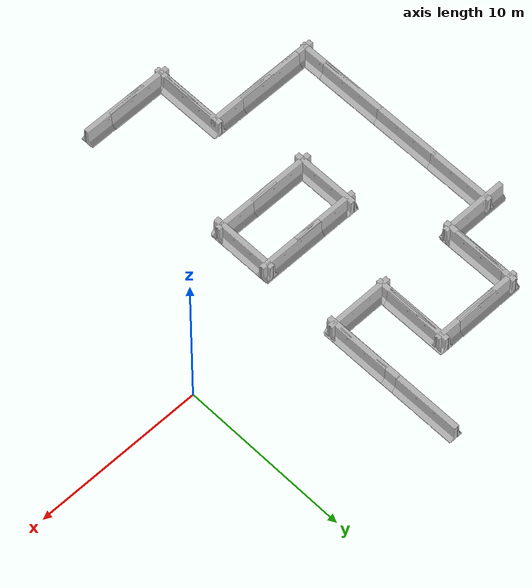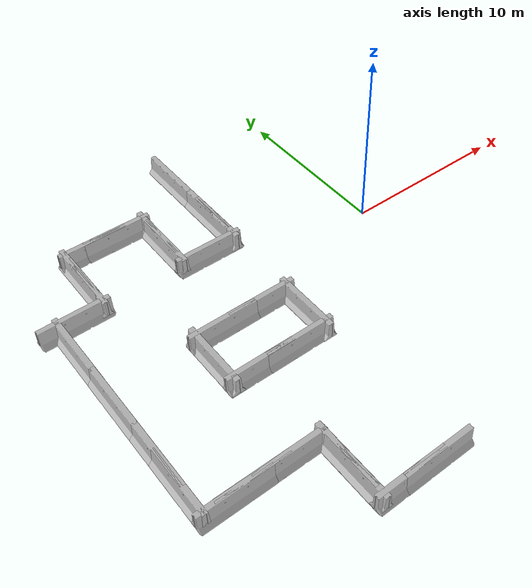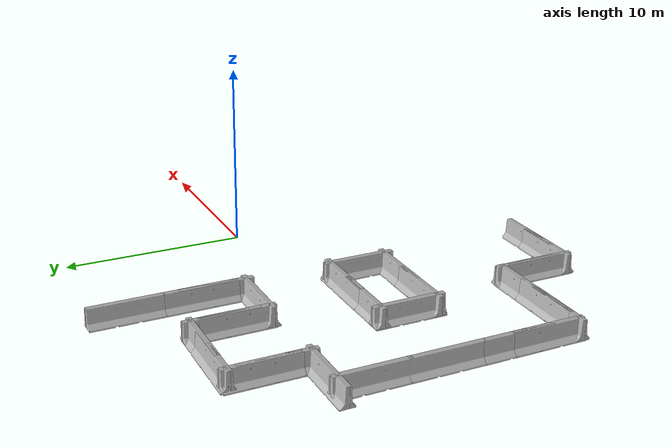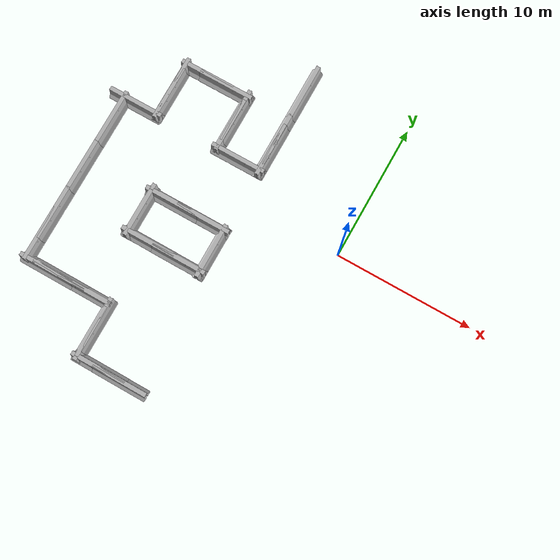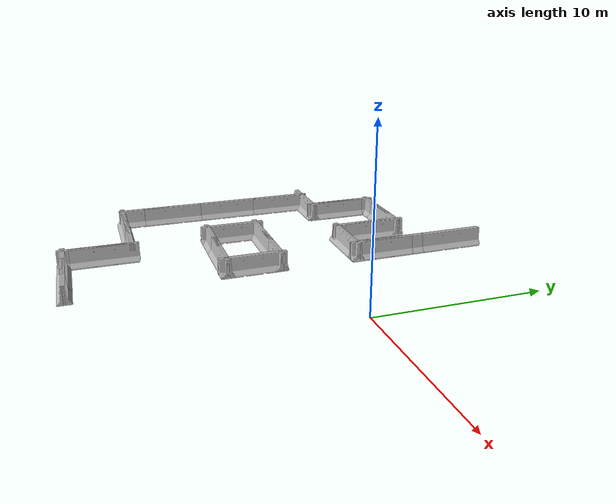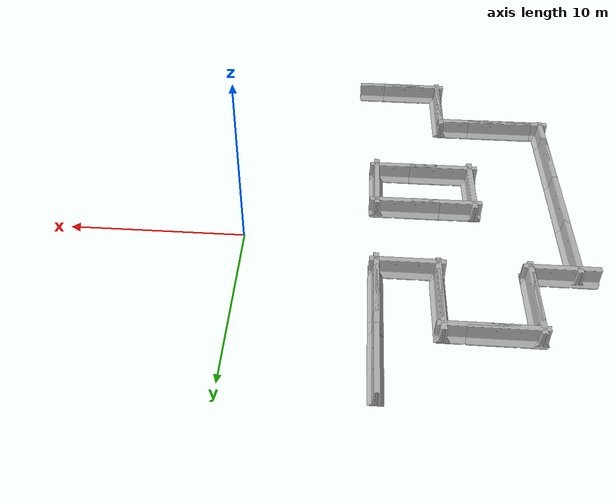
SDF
<sdf version="1.6">
 <world name="default">
  <model name="jersey_barrier_0_clone_2_clone_3">
   <static>1</static>
   <link name="link">
    <visual name="visual">
     <geometry>
      <mesh><uri>model://jersey_barrier/meshes/jersey_barrier.dae</uri><scale>1 1 1</scale></mesh>
     </geometry>
    </visual>
    <collision name="upright">
     <pose>0 0 0.5715 0 -0 0</pose>
     <geometry><box><size>4.06542 0.3063 1.143</size></box></geometry>
    </collision>
    <collision name="base">
     <pose>0 0 0.032258 0 -0 0</pose>
     <geometry><box><size>4.06542 0.8107 0.064516</size></box></geometry>
    </collision>
    <collision name="base2">
     <pose>0 0 0.1 0 -0 0</pose>
     <geometry><box><size>4.06542 0.65 0.1</size></box></geometry>
    </collision>
    <collision name="base3">
     <pose>0 0 0.2 0 -0 0</pose>
     <geometry><box><size>4.06542 0.5 0.1</size></box></geometry>
    </collision>
    <collision name="left-angle">
     <pose>0 -0.224 0.2401 0.9 -0 0</pose>
     <geometry><box><size>4.06542 0.5 0.064516</size></box></geometry>
    </collision>
    <collision name="right-angle">
     <pose>0 0.224 0.2401 -0.9 0 0</pose>
     <geometry><box><size>4.06542 0.5 0.064516</size></box></geometry>
    </collision>
   </link>
   <pose>-7.43243 4.80244 0 0 -0 1.57549</pose>
  </model>
  <model name="jersey_barrier_0_clone_2_clone_3_clone_1">
   <static>1</static>
   <link name="link">
    <visual name="visual">
     <geometry>
      <mesh><uri>model://jersey_barrier/meshes/jersey_barrier.dae</uri><scale>1 1 1</scale></mesh>
     </geometry>
    </visual>
    <collision name="upright">
     <pose>0 0 0.5715 0 -0 0</pose>
     <geometry><box><size>4.06542 0.3063 1.143</size></box></geometry>
    </collision>
    <collision name="base">
     <pose>0 0 0.032258 0 -0 0</pose>
     <geometry><box><size>4.06542 0.8107 0.064516</size></box></geometry>
    </collision>
    <collision name="base2">
     <pose>0 0 0.1 0 -0 0</pose>
     <geometry><box><size>4.06542 0.65 0.1</size></box></geometry>
    </collision>
    <collision name="base3">
     <pose>0 0 0.2 0 -0 0</pose>
     <geometry><box><size>4.06542 0.5 0.1</size></box></geometry>
    </collision>
    <collision name="left-angle">
     <pose>0 -0.224 0.2401 0.9 -0 0</pose>
     <geometry><box><size>4.06542 0.5 0.064516</size></box></geometry>
    </collision>
    <collision name="right-angle">
     <pose>0 0.224 0.2401 -0.9 0 0</pose>
     <geometry><box><size>4.06542 0.5 0.064516</size></box></geometry>
    </collision>
   </link>
   <pose>-7.4465 8.73158 0 0 -0 1.57549</pose>
  </model>
  <model name="jersey_barrier_0_clone_2_clone_3_clone_3">
   <static>1</static>
   <link name="link">
    <visual name="visual">
     <geometry>
      <mesh><uri>model://jersey_barrier/meshes/jersey_barrier.dae</uri><scale>1 1 1</scale></mesh>
     </geometry>
    </visual>
    <collision name="upright">
     <pose>0 0 0.5715 0 -0 0</pose>
     <geometry><box><size>4.06542 0.3063 1.143</size></box></geometry>
    </collision>
    <collision name="base">
     <pose>0 0 0.032258 0 -0 0</pose>
     <geometry><box><size>4.06542 0.8107 0.064516</size></box></geometry>
    </collision>
    <collision name="base2">
     <pose>0 0 0.1 0 -0 0</pose>
     <geometry><box><size>4.06542 0.65 0.1</size></box></geometry>
    </collision>
    <collision name="base3">
     <pose>0 0 0.2 0 -0 0</pose>
     <geometry><box><size>4.06542 0.5 0.1</size></box></geometry>
    </collision>
    <collision name="left-angle">
     <pose>0 -0.224 0.2401 0.9 -0 0</pose>
     <geometry><box><size>4.06542 0.5 0.064516</size></box></geometry>
    </collision>
    <collision name="right-angle">
     <pose>0 0.224 0.2401 -0.9 0 0</pose>
     <geometry><box><size>4.06542 0.5 0.064516</size></box></geometry>
    </collision>
   </link>
   <pose>-7.42195 3.99004 0 0 -0 1.57549</pose>
  </model>
  <model name="jersey_barrier_0_clone_1_clone_4">
   <static>1</static>
   <link name="link">
    <visual name="visual">
     <geometry>
      <mesh><uri>model://jersey_barrier/meshes/jersey_barrier.dae</uri><scale>1 1 1</scale></mesh>
     </geometry>
    </visual>
    <collision name="upright">
     <pose>0 0 0.5715 0 -0 0</pose>
     <geometry><box><size>4.06542 0.3063 1.143</size></box></geometry>
    </collision>
    <collision name="base">
     <pose>0 0 0.032258 0 -0 0</pose>
     <geometry><box><size>4.06542 0.8107 0.064516</size></box></geometry>
    </collision>
    <collision name="base2">
     <pose>0 0 0.1 0 -0 0</pose>
     <geometry><box><size>4.06542 0.65 0.1</size></box></geometry>
    </collision>
    <collision name="base3">
     <pose>0 0 0.2 0 -0 0</pose>
     <geometry><box><size>4.06542 0.5 0.1</size></box></geometry>
    </collision>
    <collision name="left-angle">
     <pose>0 -0.224 0.2401 0.9 -0 0</pose>
     <geometry><box><size>4.06542 0.5 0.064516</size></box></geometry>
    </collision>
    <collision name="right-angle">
     <pose>0 0.224 0.2401 -0.9 0 0</pose>
     <geometry><box><size>4.06542 0.5 0.064516</size></box></geometry>
    </collision>
   </link>
   <pose>-9.07746 2.38434 0 0 -0 0</pose>
  </model>
  <model name="jersey_barrier_0_clone_1_clone_5">
   <static>1</static>
   <link name="link">
    <visual name="visual">
     <geometry>
      <mesh><uri>model://jersey_barrier/meshes/jersey_barrier.dae</uri><scale>1 1 1</scale></mesh>
     </geometry>
    </visual>
    <collision name="upright">
     <pose>0 0 0.5715 0 -0 0</pose>
     <geometry><box><size>4.06542 0.3063 1.143</size></box></geometry>
    </collision>
    <collision name="base">
     <pose>0 0 0.032258 0 -0 0</pose>
     <geometry><box><size>4.06542 0.8107 0.064516</size></box></geometry>
    </collision>
    <collision name="base2">
     <pose>0 0 0.1 0 -0 0</pose>
     <geometry><box><size>4.06542 0.65 0.1</size></box></geometry>
    </collision>
    <collision name="base3">
     <pose>0 0 0.2 0 -0 0</pose>
     <geometry><box><size>4.06542 0.5 0.1</size></box></geometry>
    </collision>
    <collision name="left-angle">
     <pose>0 -0.224 0.2401 0.9 -0 0</pose>
     <geometry><box><size>4.06542 0.5 0.064516</size></box></geometry>
    </collision>
    <collision name="right-angle">
     <pose>0 0.224 0.2401 -0.9 0 0</pose>
     <geometry><box><size>4.06542 0.5 0.064516</size></box></geometry>
    </collision>
   </link>
   <pose>-9.04937 -2.41898 0 0 -0 0</pose>
  </model>
  <model name="jersey_barrier_0_clone_2_clone_4">
   <static>1</static>
   <link name="link">
    <visual name="visual">
     <geometry>
      <mesh><uri>model://jersey_barrier/meshes/jersey_barrier.dae</uri><scale>1 1 1</scale></mesh>
     </geometry>
    </visual>
    <collision name="upright">
     <pose>0 0 0.5715 0 -0 0</pose>
     <geometry><box><size>4.06542 0.3063 1.143</size></box></geometry>
    </collision>
    <collision name="base">
     <pose>0 0 0.032258 0 -0 0</pose>
     <geometry><box><size>4.06542 0.8107 0.064516</size></box></geometry>
    </collision>
    <collision name="base2">
     <pose>0 0 0.1 0 -0 0</pose>
     <geometry><box><size>4.06542 0.65 0.1</size></box></geometry>
    </collision>
    <collision name="base3">
     <pose>0 0 0.2 0 -0 0</pose>
     <geometry><box><size>4.06542 0.5 0.1</size></box></geometry>
    </collision>
    <collision name="left-angle">
     <pose>0 -0.224 0.2401 0.9 -0 0</pose>
     <geometry><box><size>4.06542 0.5 0.064516</size></box></geometry>
    </collision>
    <collision name="right-angle">
     <pose>0 0.224 0.2401 -0.9 0 0</pose>
     <geometry><box><size>4.06542 0.5 0.064516</size></box></geometry>
    </collision>
   </link>
   <pose>-7.44439 -4.07454 0 0 -0 1.57549</pose>
  </model>
  <model name="jersey_barrier_0_clone_1_clone_7">
   <static>1</static>
   <link name="link">
    <visual name="visual">
     <geometry>
      <mesh><uri>model://jersey_barrier/meshes/jersey_barrier.dae</uri><scale>1 1 1</scale></mesh>
     </geometry>
    </visual>
    <collision name="upright">
     <pose>0 0 0.5715 0 -0 0</pose>
     <geometry><box><size>4.06542 0.3063 1.143</size></box></geometry>
    </collision>
    <collision name="base">
     <pose>0 0 0.032258 0 -0 0</pose>
     <geometry><box><size>4.06542 0.8107 0.064516</size></box></geometry>
    </collision>
    <collision name="base2">
     <pose>0 0 0.1 0 -0 0</pose>
     <geometry><box><size>4.06542 0.65 0.1</size></box></geometry>
    </collision>
    <collision name="base3">
     <pose>0 0 0.2 0 -0 0</pose>
     <geometry><box><size>4.06542 0.5 0.1</size></box></geometry>
    </collision>
    <collision name="left-angle">
     <pose>0 -0.224 0.2401 0.9 -0 0</pose>
     <geometry><box><size>4.06542 0.5 0.064516</size></box></geometry>
    </collision>
    <collision name="right-angle">
     <pose>0 0.224 0.2401 -0.9 0 0</pose>
     <geometry><box><size>4.06542 0.5 0.064516</size></box></geometry>
    </collision>
   </link>
   <pose>-11.4391 -2.42637 0 0 -0 0</pose>
  </model>
  <model name="jersey_barrier_0_clone_1_clone_8">
   <static>1</static>
   <link name="link">
    <visual name="visual">
     <geometry>
      <mesh><uri>model://jersey_barrier/meshes/jersey_barrier.dae</uri><scale>1 1 1</scale></mesh>
     </geometry>
    </visual>
    <collision name="upright">
     <pose>0 0 0.5715 0 -0 0</pose>
     <geometry><box><size>4.06542 0.3063 1.143</size></box></geometry>
    </collision>
    <collision name="base">
     <pose>0 0 0.032258 0 -0 0</pose>
     <geometry><box><size>4.06542 0.8107 0.064516</size></box></geometry>
    </collision>
    <collision name="base2">
     <pose>0 0 0.1 0 -0 0</pose>
     <geometry><box><size>4.06542 0.65 0.1</size></box></geometry>
    </collision>
    <collision name="base3">
     <pose>0 0 0.2 0 -0 0</pose>
     <geometry><box><size>4.06542 0.5 0.1</size></box></geometry>
    </collision>
    <collision name="left-angle">
     <pose>0 -0.224 0.2401 0.9 -0 0</pose>
     <geometry><box><size>4.06542 0.5 0.064516</size></box></geometry>
    </collision>
    <collision name="right-angle">
     <pose>0 0.224 0.2401 -0.9 0 0</pose>
     <geometry><box><size>4.06542 0.5 0.064516</size></box></geometry>
    </collision>
   </link>
   <pose>-9.07425 -5.61036 0 0 -0 0</pose>
  </model>
  <model name="jersey_barrier_0_clone_1_clone_10">
   <static>1</static>
   <link name="link">
    <visual name="visual">
     <geometry>
      <mesh><uri>model://jersey_barrier/meshes/jersey_barrier.dae</uri><scale>1 1 1</scale></mesh>
     </geometry>
    </visual>
    <collision name="upright">
     <pose>0 0 0.5715 0 -0 0</pose>
     <geometry><box><size>4.06542 0.3063 1.143</size></box></geometry>
    </collision>
    <collision name="base">
     <pose>0 0 0.032258 0 -0 0</pose>
     <geometry><box><size>4.06542 0.8107 0.064516</size></box></geometry>
    </collision>
    <collision name="base2">
     <pose>0 0 0.1 0 -0 0</pose>
     <geometry><box><size>4.06542 0.65 0.1</size></box></geometry>
    </collision>
    <collision name="base3">
     <pose>0 0 0.2 0 -0 0</pose>
     <geometry><box><size>4.06542 0.5 0.1</size></box></geometry>
    </collision>
    <collision name="left-angle">
     <pose>0 -0.224 0.2401 0.9 -0 0</pose>
     <geometry><box><size>4.06542 0.5 0.064516</size></box></geometry>
    </collision>
    <collision name="right-angle">
     <pose>0 0.224 0.2401 -0.9 0 0</pose>
     <geometry><box><size>4.06542 0.5 0.064516</size></box></geometry>
    </collision>
   </link>
   <pose>-11.4398 -5.59984 0 0 -0 0</pose>
  </model>
  <model name="jersey_barrier_0_clone_2_clone_4_clone">
   <static>1</static>
   <link name="link">
    <visual name="visual">
     <geometry>
      <mesh><uri>model://jersey_barrier/meshes/jersey_barrier.dae</uri><scale>1 1 1</scale></mesh>
     </geometry>
    </visual>
    <collision name="upright">
     <pose>0 0 0.5715 0 -0 0</pose>
     <geometry><box><size>4.06542 0.3063 1.143</size></box></geometry>
    </collision>
    <collision name="base">
     <pose>0 0 0.032258 0 -0 0</pose>
     <geometry><box><size>4.06542 0.8107 0.064516</size></box></geometry>
    </collision>
    <collision name="base2">
     <pose>0 0 0.1 0 -0 0</pose>
     <geometry><box><size>4.06542 0.65 0.1</size></box></geometry>
    </collision>
    <collision name="base3">
     <pose>0 0 0.2 0 -0 0</pose>
     <geometry><box><size>4.06542 0.5 0.1</size></box></geometry>
    </collision>
    <collision name="left-angle">
     <pose>0 -0.224 0.2401 0.9 -0 0</pose>
     <geometry><box><size>4.06542 0.5 0.064516</size></box></geometry>
    </collision>
    <collision name="right-angle">
     <pose>0 0.224 0.2401 -0.9 0 0</pose>
     <geometry><box><size>4.06542 0.5 0.064516</size></box></geometry>
    </collision>
   </link>
   <pose>-13.0271 -3.9955 0 0 -0 1.57549</pose>
  </model>
  <model name="jersey_barrier_0_clone_1_clone_13">
   <static>1</static>
   <link name="link">
    <visual name="visual">
     <geometry>
      <mesh><uri>model://jersey_barrier/meshes/jersey_barrier.dae</uri><scale>1 1 1</scale></mesh>
     </geometry>
    </visual>
    <collision name="upright">
     <pose>0 0 0.5715 0 -0 0</pose>
     <geometry><box><size>4.06542 0.3063 1.143</size></box></geometry>
    </collision>
    <collision name="base">
     <pose>0 0 0.032258 0 -0 0</pose>
     <geometry><box><size>4.06542 0.8107 0.064516</size></box></geometry>
    </collision>
    <collision name="base2">
     <pose>0 0 0.1 0 -0 0</pose>
     <geometry><box><size>4.06542 0.65 0.1</size></box></geometry>
    </collision>
    <collision name="base3">
     <pose>0 0 0.2 0 -0 0</pose>
     <geometry><box><size>4.06542 0.5 0.1</size></box></geometry>
    </collision>
    <collision name="left-angle">
     <pose>0 -0.224 0.2401 0.9 -0 0</pose>
     <geometry><box><size>4.06542 0.5 0.064516</size></box></geometry>
    </collision>
    <collision name="right-angle">
     <pose>0 0.224 0.2401 -0.9 0 0</pose>
     <geometry><box><size>4.06542 0.5 0.064516</size></box></geometry>
    </collision>
   </link>
   <pose>-13.4424 -10.4614 0 0 -0 0</pose>
  </model>
  <model name="jersey_barrier_0_clone_1_clone_14">
   <static>1</static>
   <link name="link">
    <visual name="visual">
     <geometry>
      <mesh><uri>model://jersey_barrier/meshes/jersey_barrier.dae</uri><scale>1 1 1</scale></mesh>
     </geometry>
    </visual>
    <collision name="upright">
     <pose>0 0 0.5715 0 -0 0</pose>
     <geometry><box><size>4.06542 0.3063 1.143</size></box></geometry>
    </collision>
    <collision name="base">
     <pose>0 0 0.032258 0 -0 0</pose>
     <geometry><box><size>4.06542 0.8107 0.064516</size></box></geometry>
    </collision>
    <collision name="base2">
     <pose>0 0 0.1 0 -0 0</pose>
     <geometry><box><size>4.06542 0.65 0.1</size></box></geometry>
    </collision>
    <collision name="base3">
     <pose>0 0 0.2 0 -0 0</pose>
     <geometry><box><size>4.06542 0.5 0.1</size></box></geometry>
    </collision>
    <collision name="left-angle">
     <pose>0 -0.224 0.2401 0.9 -0 0</pose>
     <geometry><box><size>4.06542 0.5 0.064516</size></box></geometry>
    </collision>
    <collision name="right-angle">
     <pose>0 0.224 0.2401 -0.9 0 0</pose>
     <geometry><box><size>4.06542 0.5 0.064516</size></box></geometry>
    </collision>
   </link>
   <pose>-15.4018 -10.4601 0 0 -0 0</pose>
  </model>
  <model name="jersey_barrier_0_clone_2_clone_4_clone_clone">
   <static>1</static>
   <link name="link">
    <visual name="visual">
     <geometry>
      <mesh><uri>model://jersey_barrier/meshes/jersey_barrier.dae</uri><scale>1 1 1</scale></mesh>
     </geometry>
    </visual>
    <collision name="upright">
     <pose>0 0 0.5715 0 -0 0</pose>
     <geometry><box><size>4.06542 0.3063 1.143</size></box></geometry>
    </collision>
    <collision name="base">
     <pose>0 0 0.032258 0 -0 0</pose>
     <geometry><box><size>4.06542 0.8107 0.064516</size></box></geometry>
    </collision>
    <collision name="base2">
     <pose>0 0 0.1 0 -0 0</pose>
     <geometry><box><size>4.06542 0.65 0.1</size></box></geometry>
    </collision>
    <collision name="base3">
     <pose>0 0 0.2 0 -0 0</pose>
     <geometry><box><size>4.06542 0.5 0.1</size></box></geometry>
    </collision>
    <collision name="left-angle">
     <pose>0 -0.224 0.2401 0.9 -0 0</pose>
     <geometry><box><size>4.06542 0.5 0.064516</size></box></geometry>
    </collision>
    <collision name="right-angle">
     <pose>0 0.224 0.2401 -0.9 0 0</pose>
     <geometry><box><size>4.06542 0.5 0.064516</size></box></geometry>
    </collision>
   </link>
   <pose>-18.0345 0.68222 0 0 -0 1.57549</pose>
  </model>
  <model name="jersey_barrier_0_clone_2_clone_4_clone_clone_0">
   <static>1</static>
   <link name="link">
    <visual name="visual">
     <geometry>
      <mesh><uri>model://jersey_barrier/meshes/jersey_barrier.dae</uri><scale>1 1 1</scale></mesh>
     </geometry>
    </visual>
    <collision name="upright">
     <pose>0 0 0.5715 0 -0 0</pose>
     <geometry><box><size>4.06542 0.3063 1.143</size></box></geometry>
    </collision>
    <collision name="base">
     <pose>0 0 0.032258 0 -0 0</pose>
     <geometry><box><size>4.06542 0.8107 0.064516</size></box></geometry>
    </collision>
    <collision name="base2">
     <pose>0 0 0.1 0 -0 0</pose>
     <geometry><box><size>4.06542 0.65 0.1</size></box></geometry>
    </collision>
    <collision name="base3">
     <pose>0 0 0.2 0 -0 0</pose>
     <geometry><box><size>4.06542 0.5 0.1</size></box></geometry>
    </collision>
    <collision name="left-angle">
     <pose>0 -0.224 0.2401 0.9 -0 0</pose>
     <geometry><box><size>4.06542 0.5 0.064516</size></box></geometry>
    </collision>
    <collision name="right-angle">
     <pose>0 0.224 0.2401 -0.9 0 0</pose>
     <geometry><box><size>4.06542 0.5 0.064516</size></box></geometry>
    </collision>
   </link>
   <pose>-18.0231 -3.12239 0 0 -0 1.57549</pose>
  </model>
  <model name="jersey_barrier_0_clone_2_clone_4_clone_clone_1">
   <static>1</static>
   <link name="link">
    <visual name="visual">
     <geometry>
      <mesh><uri>model://jersey_barrier/meshes/jersey_barrier.dae</uri><scale>1 1 1</scale></mesh>
     </geometry>
    </visual>
    <collision name="upright">
     <pose>0 0 0.5715 0 -0 0</pose>
     <geometry><box><size>4.06542 0.3063 1.143</size></box></geometry>
    </collision>
    <collision name="base">
     <pose>0 0 0.032258 0 -0 0</pose>
     <geometry><box><size>4.06542 0.8107 0.064516</size></box></geometry>
    </collision>
    <collision name="base2">
     <pose>0 0 0.1 0 -0 0</pose>
     <geometry><box><size>4.06542 0.65 0.1</size></box></geometry>
    </collision>
    <collision name="base3">
     <pose>0 0 0.2 0 -0 0</pose>
     <geometry><box><size>4.06542 0.5 0.1</size></box></geometry>
    </collision>
    <collision name="left-angle">
     <pose>0 -0.224 0.2401 0.9 -0 0</pose>
     <geometry><box><size>4.06542 0.5 0.064516</size></box></geometry>
    </collision>
    <collision name="right-angle">
     <pose>0 0.224 0.2401 -0.9 0 0</pose>
     <geometry><box><size>4.06542 0.5 0.064516</size></box></geometry>
    </collision>
   </link>
   <pose>-18.0062 -7.01659 0 0 -0 1.57549</pose>
  </model>
  <model name="jersey_barrier_0_clone_2_clone_4_clone_clone_2">
   <static>1</static>
   <link name="link">
    <visual name="visual">
     <geometry>
      <mesh><uri>model://jersey_barrier/meshes/jersey_barrier.dae</uri><scale>1 1 1</scale></mesh>
     </geometry>
    </visual>
    <collision name="upright">
     <pose>0 0 0.5715 0 -0 0</pose>
     <geometry><box><size>4.06542 0.3063 1.143</size></box></geometry>
    </collision>
    <collision name="base">
     <pose>0 0 0.032258 0 -0 0</pose>
     <geometry><box><size>4.06542 0.8107 0.064516</size></box></geometry>
    </collision>
    <collision name="base2">
     <pose>0 0 0.1 0 -0 0</pose>
     <geometry><box><size>4.06542 0.65 0.1</size></box></geometry>
    </collision>
    <collision name="base3">
     <pose>0 0 0.2 0 -0 0</pose>
     <geometry><box><size>4.06542 0.5 0.1</size></box></geometry>
    </collision>
    <collision name="left-angle">
     <pose>0 -0.224 0.2401 0.9 -0 0</pose>
     <geometry><box><size>4.06542 0.5 0.064516</size></box></geometry>
    </collision>
    <collision name="right-angle">
     <pose>0 0.224 0.2401 -0.9 0 0</pose>
     <geometry><box><size>4.06542 0.5 0.064516</size></box></geometry>
    </collision>
   </link>
   <pose>-17.9989 -8.67248 0 0 -0 1.57549</pose>
  </model>
  <model name="jersey_barrier_0_clone_1_clone_14_clone">
   <static>1</static>
   <link name="link">
    <visual name="visual">
     <geometry>
      <mesh><uri>model://jersey_barrier/meshes/jersey_barrier.dae</uri><scale>1 1 1</scale></mesh>
     </geometry>
    </visual>
    <collision name="upright">
     <pose>0 0 0.5715 0 -0 0</pose>
     <geometry><box><size>4.06542 0.3063 1.143</size></box></geometry>
    </collision>
    <collision name="base">
     <pose>0 0 0.032258 0 -0 0</pose>
     <geometry><box><size>4.06542 0.8107 0.064516</size></box></geometry>
    </collision>
    <collision name="base2">
     <pose>0 0 0.1 0 -0 0</pose>
     <geometry><box><size>4.06542 0.65 0.1</size></box></geometry>
    </collision>
    <collision name="base3">
     <pose>0 0 0.2 0 -0 0</pose>
     <geometry><box><size>4.06542 0.5 0.1</size></box></geometry>
    </collision>
    <collision name="left-angle">
     <pose>0 -0.224 0.2401 0.9 -0 0</pose>
     <geometry><box><size>4.06542 0.5 0.064516</size></box></geometry>
    </collision>
    <collision name="right-angle">
     <pose>0 0.224 0.2401 -0.9 0 0</pose>
     <geometry><box><size>4.06542 0.5 0.064516</size></box></geometry>
    </collision>
   </link>
   <pose>-16.3909 -10.4718 0 0 -0 0</pose>
  </model>
  <model name="jersey_barrier_0_clone_2_clone_6_clone">
   <static>1</static>
   <link name="link">
    <visual name="visual">
     <geometry>
      <mesh><uri>model://jersey_barrier/meshes/jersey_barrier.dae</uri><scale>1 1 1</scale></mesh>
     </geometry>
    </visual>
    <collision name="upright">
     <pose>0 0 0.5715 0 -0 0</pose>
     <geometry><box><size>4.06542 0.3063 1.143</size></box></geometry>
    </collision>
    <collision name="base">
     <pose>0 0 0.032258 0 -0 0</pose>
     <geometry><box><size>4.06542 0.8107 0.064516</size></box></geometry>
    </collision>
    <collision name="base2">
     <pose>0 0 0.1 0 -0 0</pose>
     <geometry><box><size>4.06542 0.65 0.1</size></box></geometry>
    </collision>
    <collision name="base3">
     <pose>0 0 0.2 0 -0 0</pose>
     <geometry><box><size>4.06542 0.5 0.1</size></box></geometry>
    </collision>
    <collision name="left-angle">
     <pose>0 -0.224 0.2401 0.9 -0 0</pose>
     <geometry><box><size>4.06542 0.5 0.064516</size></box></geometry>
    </collision>
    <collision name="right-angle">
     <pose>0 0.224 0.2401 -0.9 0 0</pose>
     <geometry><box><size>4.06542 0.5 0.064516</size></box></geometry>
    </collision>
   </link>
   <pose>-11.5824 -12.0812 0 0 -0 1.57549</pose>
  </model>
  <model name="jersey_barrier_0_clone_1_clone_12">
   <static>1</static>
   <link name="link">
    <visual name="visual">
     <geometry>
      <mesh><uri>model://jersey_barrier/meshes/jersey_barrier.dae</uri><scale>1 1 1</scale></mesh>
     </geometry>
    </visual>
    <collision name="upright">
     <pose>0 0 0.5715 0 -0 0</pose>
     <geometry><box><size>4.06542 0.3063 1.143</size></box></geometry>
    </collision>
    <collision name="base">
     <pose>0 0 0.032258 0 -0 0</pose>
     <geometry><box><size>4.06542 0.8107 0.064516</size></box></geometry>
    </collision>
    <collision name="base2">
     <pose>0 0 0.1 0 -0 0</pose>
     <geometry><box><size>4.06542 0.65 0.1</size></box></geometry>
    </collision>
    <collision name="base3">
     <pose>0 0 0.2 0 -0 0</pose>
     <geometry><box><size>4.06542 0.5 0.1</size></box></geometry>
    </collision>
    <collision name="left-angle">
     <pose>0 -0.224 0.2401 0.9 -0 0</pose>
     <geometry><box><size>4.06542 0.5 0.064516</size></box></geometry>
    </collision>
    <collision name="right-angle">
     <pose>0 0.224 0.2401 -0.9 0 0</pose>
     <geometry><box><size>4.06542 0.5 0.064516</size></box></geometry>
    </collision>
   </link>
   <pose>-8.35557 -14.4512 0 0 -0 0</pose>
  </model>
  <model name="jersey_barrier_0_clone_1_clone_15">
   <static>1</static>
   <link name="link">
    <visual name="visual">
     <geometry>
      <mesh><uri>model://jersey_barrier/meshes/jersey_barrier.dae</uri><scale>1 1 1</scale></mesh>
     </geometry>
    </visual>
    <collision name="upright">
     <pose>0 0 0.5715 0 -0 0</pose>
     <geometry><box><size>4.06542 0.3063 1.143</size></box></geometry>
    </collision>
    <collision name="base">
     <pose>0 0 0.032258 0 -0 0</pose>
     <geometry><box><size>4.06542 0.8107 0.064516</size></box></geometry>
    </collision>
    <collision name="base2">
     <pose>0 0 0.1 0 -0 0</pose>
     <geometry><box><size>4.06542 0.65 0.1</size></box></geometry>
    </collision>
    <collision name="base3">
     <pose>0 0 0.2 0 -0 0</pose>
     <geometry><box><size>4.06542 0.5 0.1</size></box></geometry>
    </collision>
    <collision name="left-angle">
     <pose>0 -0.224 0.2401 0.9 -0 0</pose>
     <geometry><box><size>4.06542 0.5 0.064516</size></box></geometry>
    </collision>
    <collision name="right-angle">
     <pose>0 0.224 0.2401 -0.9 0 0</pose>
     <geometry><box><size>4.06542 0.5 0.064516</size></box></geometry>
    </collision>
   </link>
   <pose>-9.96065 -14.4391 0 0 -0 0</pose>
  </model>
  <model name="jersey_barrier_0_clone_2_clone_6_clone_clone">
   <static>1</static>
   <link name="link">
    <visual name="visual">
     <geometry>
      <mesh><uri>model://jersey_barrier/meshes/jersey_barrier.dae</uri><scale>1 1 1</scale></mesh>
     </geometry>
    </visual>
    <collision name="upright">
     <pose>0 0 0.5715 0 -0 0</pose>
     <geometry><box><size>4.06542 0.3063 1.143</size></box></geometry>
    </collision>
    <collision name="base">
     <pose>0 0 0.032258 0 -0 0</pose>
     <geometry><box><size>4.06542 0.8107 0.064516</size></box></geometry>
    </collision>
    <collision name="base2">
     <pose>0 0 0.1 0 -0 0</pose>
     <geometry><box><size>4.06542 0.65 0.1</size></box></geometry>
    </collision>
    <collision name="base3">
     <pose>0 0 0.2 0 -0 0</pose>
     <geometry><box><size>4.06542 0.5 0.1</size></box></geometry>
    </collision>
    <collision name="left-angle">
     <pose>0 -0.224 0.2401 0.9 -0 0</pose>
     <geometry><box><size>4.06542 0.5 0.064516</size></box></geometry>
    </collision>
    <collision name="right-angle">
     <pose>0 0.224 0.2401 -0.9 0 0</pose>
     <geometry><box><size>4.06542 0.5 0.064516</size></box></geometry>
    </collision>
   </link>
   <pose>-11.5817 -12.7466 0 0 -0 1.57549</pose>
  </model>
  <model name="jersey_barrier_0_clone_1_clone_4_clone">
   <static>1</static>
   <link name="link">
    <visual name="visual">
     <geometry>
      <mesh><uri>model://jersey_barrier/meshes/jersey_barrier.dae</uri><scale>1 1 1</scale></mesh>
     </geometry>
    </visual>
    <collision name="upright">
     <pose>0 0 0.5715 0 -0 0</pose>
     <geometry><box><size>4.06542 0.3063 1.143</size></box></geometry>
    </collision>
    <collision name="base">
     <pose>0 0 0.032258 0 -0 0</pose>
     <geometry><box><size>4.06542 0.8107 0.064516</size></box></geometry>
    </collision>
    <collision name="base2">
     <pose>0 0 0.1 0 -0 0</pose>
     <geometry><box><size>4.06542 0.65 0.1</size></box></geometry>
    </collision>
    <collision name="base3">
     <pose>0 0 0.2 0 -0 0</pose>
     <geometry><box><size>4.06542 0.5 0.1</size></box></geometry>
    </collision>
    <collision name="left-angle">
     <pose>0 -0.224 0.2401 0.9 -0 0</pose>
     <geometry><box><size>4.06542 0.5 0.064516</size></box></geometry>
    </collision>
    <collision name="right-angle">
     <pose>0 0.224 0.2401 -0.9 0 0</pose>
     <geometry><box><size>4.06542 0.5 0.064516</size></box></geometry>
    </collision>
   </link>
   <pose>-17.1351 2.38703 0 0 -0 0</pose>
  </model>
  <model name="jersey_barrier_0_clone_2_clone_3_clone_4">
   <static>1</static>
   <link name="link">
    <visual name="visual">
     <geometry>
      <mesh><uri>model://jersey_barrier/meshes/jersey_barrier.dae</uri><scale>1 1 1</scale></mesh>
     </geometry>
    </visual>
    <collision name="upright">
     <pose>0 0 0.5715 0 -0 0</pose>
     <geometry><box><size>4.06542 0.3063 1.143</size></box></geometry>
    </collision>
    <collision name="base">
     <pose>0 0 0.032258 0 -0 0</pose>
     <geometry><box><size>4.06542 0.8107 0.064516</size></box></geometry>
    </collision>
    <collision name="base2">
     <pose>0 0 0.1 0 -0 0</pose>
     <geometry><box><size>4.06542 0.65 0.1</size></box></geometry>
    </collision>
    <collision name="base3">
     <pose>0 0 0.2 0 -0 0</pose>
     <geometry><box><size>4.06542 0.5 0.1</size></box></geometry>
    </collision>
    <collision name="left-angle">
     <pose>0 -0.224 0.2401 0.9 -0 0</pose>
     <geometry><box><size>4.06542 0.5 0.064516</size></box></geometry>
    </collision>
    <collision name="right-angle">
     <pose>0 0.224 0.2401 -0.9 0 0</pose>
     <geometry><box><size>4.06542 0.5 0.064516</size></box></geometry>
    </collision>
   </link>
   <pose>-10.7014 4.13933 0 0 -0 1.57549</pose>
  </model>
  <model name="jersey_barrier_0_clone_2_clone_3_clone_5">
   <static>1</static>
   <link name="link">
    <visual name="visual">
     <geometry>
      <mesh><uri>model://jersey_barrier/meshes/jersey_barrier.dae</uri><scale>1 1 1</scale></mesh>
     </geometry>
    </visual>
    <collision name="upright">
     <pose>0 0 0.5715 0 -0 0</pose>
     <geometry><box><size>4.06542 0.3063 1.143</size></box></geometry>
    </collision>
    <collision name="base">
     <pose>0 0 0.032258 0 -0 0</pose>
     <geometry><box><size>4.06542 0.8107 0.064516</size></box></geometry>
    </collision>
    <collision name="base2">
     <pose>0 0 0.1 0 -0 0</pose>
     <geometry><box><size>4.06542 0.65 0.1</size></box></geometry>
    </collision>
    <collision name="base3">
     <pose>0 0 0.2 0 -0 0</pose>
     <geometry><box><size>4.06542 0.5 0.1</size></box></geometry>
    </collision>
    <collision name="left-angle">
     <pose>0 -0.224 0.2401 0.9 -0 0</pose>
     <geometry><box><size>4.06542 0.5 0.064516</size></box></geometry>
    </collision>
    <collision name="right-angle">
     <pose>0 0.224 0.2401 -0.9 0 0</pose>
     <geometry><box><size>4.06542 0.5 0.064516</size></box></geometry>
    </collision>
   </link>
   <pose>-15.5055 4.07819 0 0 -0 1.57549</pose>
  </model>
  <model name="jersey_barrier_0_clone_1_clone_4_clone_clone">
   <static>1</static>
   <link name="link">
    <visual name="visual">
     <geometry>
      <mesh><uri>model://jersey_barrier/meshes/jersey_barrier.dae</uri><scale>1 1 1</scale></mesh>
     </geometry>
    </visual>
    <collision name="upright">
     <pose>0 0 0.5715 0 -0 0</pose>
     <geometry><box><size>4.06542 0.3063 1.143</size></box></geometry>
    </collision>
    <collision name="base">
     <pose>0 0 0.032258 0 -0 0</pose>
     <geometry><box><size>4.06542 0.8107 0.064516</size></box></geometry>
    </collision>
    <collision name="base2">
     <pose>0 0 0.1 0 -0 0</pose>
     <geometry><box><size>4.06542 0.65 0.1</size></box></geometry>
    </collision>
    <collision name="base3">
     <pose>0 0 0.2 0 -0 0</pose>
     <geometry><box><size>4.06542 0.5 0.1</size></box></geometry>
    </collision>
    <collision name="left-angle">
     <pose>0 -0.224 0.2401 0.9 -0 0</pose>
     <geometry><box><size>4.06542 0.5 0.064516</size></box></geometry>
    </collision>
    <collision name="right-angle">
     <pose>0 0.224 0.2401 -0.9 0 0</pose>
     <geometry><box><size>4.06542 0.5 0.064516</size></box></geometry>
    </collision>
   </link>
   <pose>-12.3793 6.51201 0 0 -0 0</pose>
  </model>
  <model name="jersey_barrier_0_clone_1_clone_4_clone_clone_0">
   <static>1</static>
   <link name="link">
    <visual name="visual">
     <geometry>
      <mesh><uri>model://jersey_barrier/meshes/jersey_barrier.dae</uri><scale>1 1 1</scale></mesh>
     </geometry>
    </visual>
    <collision name="upright">
     <pose>0 0 0.5715 0 -0 0</pose>
     <geometry><box><size>4.06542 0.3063 1.143</size></box></geometry>
    </collision>
    <collision name="base">
     <pose>0 0 0.032258 0 -0 0</pose>
     <geometry><box><size>4.06542 0.8107 0.064516</size></box></geometry>
    </collision>
    <collision name="base2">
     <pose>0 0 0.1 0 -0 0</pose>
     <geometry><box><size>4.06542 0.65 0.1</size></box></geometry>
    </collision>
    <collision name="base3">
     <pose>0 0 0.2 0 -0 0</pose>
     <geometry><box><size>4.06542 0.5 0.1</size></box></geometry>
    </collision>
    <collision name="left-angle">
     <pose>0 -0.224 0.2401 0.9 -0 0</pose>
     <geometry><box><size>4.06542 0.5 0.064516</size></box></geometry>
    </collision>
    <collision name="right-angle">
     <pose>0 0.224 0.2401 -0.9 0 0</pose>
     <geometry><box><size>4.06542 0.5 0.064516</size></box></geometry>
    </collision>
   </link>
   <pose>-13.8493 6.52243 0 0 -0 0</pose>
  </model>
  <model name="jersey_barrier_0_clone_2_clone_3_clone_5_clone">
   <static>1</static>
   <link name="link">
    <visual name="visual">
     <geometry>
      <mesh><uri>model://jersey_barrier/meshes/jersey_barrier.dae</uri><scale>1 1 1</scale></mesh>
     </geometry>
    </visual>
    <collision name="upright">
     <pose>0 0 0.5715 0 -0 0</pose>
     <geometry><box><size>4.06542 0.3063 1.143</size></box></geometry>
    </collision>
    <collision name="base">
     <pose>0 0 0.032258 0 -0 0</pose>
     <geometry><box><size>4.06542 0.8107 0.064516</size></box></geometry>
    </collision>
    <collision name="base2">
     <pose>0 0 0.1 0 -0 0</pose>
     <geometry><box><size>4.06542 0.65 0.1</size></box></geometry>
    </collision>
    <collision name="base3">
     <pose>0 0 0.2 0 -0 0</pose>
     <geometry><box><size>4.06542 0.5 0.1</size></box></geometry>
    </collision>
    <collision name="left-angle">
     <pose>0 -0.224 0.2401 0.9 -0 0</pose>
     <geometry><box><size>4.06542 0.5 0.064516</size></box></geometry>
    </collision>
    <collision name="right-angle">
     <pose>0 0.224 0.2401 -0.9 0 0</pose>
     <geometry><box><size>4.06542 0.5 0.064516</size></box></geometry>
    </collision>
   </link>
   <pose>-10.6941 4.91303 0 0 -0 1.57549</pose>
  </model>
  <model name="jersey_barrier_0_clone_2_clone_3_clone_5_clone_0">
   <static>1</static>
   <link name="link">
    <visual name="visual">
     <geometry>
      <mesh><uri>model://jersey_barrier/meshes/jersey_barrier.dae</uri><scale>1 1 1</scale></mesh>
     </geometry>
    </visual>
    <collision name="upright">
     <pose>0 0 0.5715 0 -0 0</pose>
     <geometry><box><size>4.06542 0.3063 1.143</size></box></geometry>
    </collision>
    <collision name="base">
     <pose>0 0 0.032258 0 -0 0</pose>
     <geometry><box><size>4.06542 0.8107 0.064516</size></box></geometry>
    </collision>
    <collision name="base2">
     <pose>0 0 0.1 0 -0 0</pose>
     <geometry><box><size>4.06542 0.65 0.1</size></box></geometry>
    </collision>
    <collision name="base3">
     <pose>0 0 0.2 0 -0 0</pose>
     <geometry><box><size>4.06542 0.5 0.1</size></box></geometry>
    </collision>
    <collision name="left-angle">
     <pose>0 -0.224 0.2401 0.9 -0 0</pose>
     <geometry><box><size>4.06542 0.5 0.064516</size></box></geometry>
    </collision>
    <collision name="right-angle">
     <pose>0 0.224 0.2401 -0.9 0 0</pose>
     <geometry><box><size>4.06542 0.5 0.064516</size></box></geometry>
    </collision>
   </link>
   <pose>-15.5161 4.85916 0 0 -0 1.57549</pose>
  </model>
 </world>
</sdf>
